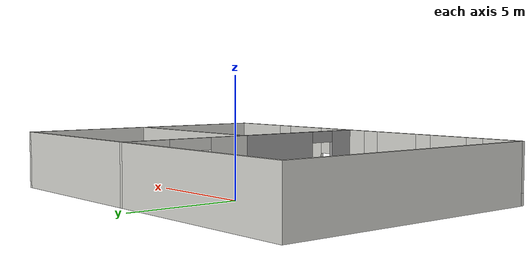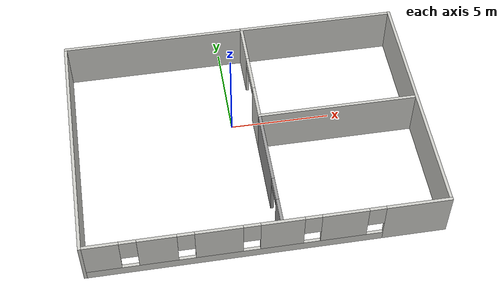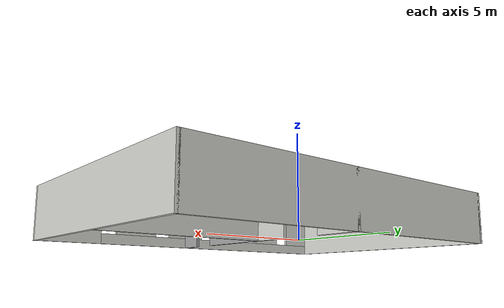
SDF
<?xml version='1.0'?>
<sdf version='1.6'>
  <model name='at_test_env'>
    <pose frame=''>0.56691 -1.61294 0 0 -0 0</pose>
    <link name='Wall_10'>
      <collision name='Wall_10_Collision'>
        <geometry>
          <box>
            <size>17.25 0.15 2.5</size>
          </box>
        </geometry>
        <pose frame=''>0 0 1.25 0 -0 0</pose>
      </collision>
      <visual name='Wall_10_Visual'>
        <pose frame=''>0 0 1.25 0 -0 0</pose>
        <geometry>
          <box>
            <size>17.25 0.15 2.5</size>
          </box>
        </geometry>
        <material>
          <script>
            <uri>file://media/materials/scripts/gazebo.material</uri>
            <name>Gazebo/CeilingTiled</name>
          </script>
          <ambient>1 1 1 1</ambient>
        </material>
        <meta>
          <layer>0</layer>
        </meta>
      </visual>
      <pose frame=''>-0 6.05 0 0 -0 0</pose>
    </link>
    <link name='Wall_11'>
      <collision name='Wall_11_Collision'>
        <geometry>
          <box>
            <size>12.25 0.15 2.5</size>
          </box>
        </geometry>
        <pose frame=''>0 0 1.25 0 -0 0</pose>
      </collision>
      <visual name='Wall_11_Visual'>
        <pose frame=''>0 0 1.25 0 -0 0</pose>
        <geometry>
          <box>
            <size>12.25 0.15 2.5</size>
          </box>
        </geometry>
        <material>
          <script>
            <uri>file://media/materials/scripts/gazebo.material</uri>
            <name>Gazebo/CeilingTiled</name>
          </script>
          <ambient>1 1 1 1</ambient>
        </material>
        <meta>
          <layer>0</layer>
        </meta>
      </visual>
      <pose frame=''>8.55 -0 0 0 -0 -1.5708</pose>
    </link>
    <link name='Wall_12'>
      <pose frame=''>-0 -6.05 0 0 -0 3.14159</pose>
      <visual name='Wall_12_Visual_0'>
        <pose frame=''>-7.05912 0 1.25 0 -0 0</pose>
        <geometry>
          <box>
            <size>3.13176 0.15 2.5</size>
          </box>
        </geometry>
        <material>
          <script>
            <uri>file://media/materials/scripts/gazebo.material</uri>
            <name>Gazebo/CeilingTiled</name>
          </script>
          <ambient>1 1 1 1</ambient>
        </material>
        <meta>
          <layer>0</layer>
        </meta>
      </visual>
      <collision name='Wall_12_Collision_0'>
        <geometry>
          <box>
            <size>3.13176 0.15 2.5</size>
          </box>
        </geometry>
        <pose frame=''>-7.05912 0 1.25 0 -0 0</pose>
      </collision>
      <visual name='Wall_12_Visual_1'>
        <pose frame=''>1.56588 0 0.25 0 -0 0</pose>
        <geometry>
          <box>
            <size>14.1182 0.15 0.5</size>
          </box>
        </geometry>
        <material>
          <script>
            <uri>file://media/materials/scripts/gazebo.material</uri>
            <name>Gazebo/CeilingTiled</name>
          </script>
          <ambient>1 1 1 1</ambient>
        </material>
        <meta>
          <layer>0</layer>
        </meta>
      </visual>
      <collision name='Wall_12_Collision_1'>
        <geometry>
          <box>
            <size>14.1182 0.15 0.5</size>
          </box>
        </geometry>
        <pose frame=''>1.56588 0 0.25 0 -0 0</pose>
      </collision>
      <visual name='Wall_12_Visual_2'>
        <pose frame=''>-3.59432 0 1.5 0 -0 0</pose>
        <geometry>
          <box>
            <size>2.19784 0.15 2</size>
          </box>
        </geometry>
        <material>
          <script>
            <uri>file://media/materials/scripts/gazebo.material</uri>
            <name>Gazebo/CeilingTiled</name>
          </script>
          <ambient>1 1 1 1</ambient>
        </material>
        <meta>
          <layer>0</layer>
        </meta>
      </visual>
      <collision name='Wall_12_Collision_2'>
        <geometry>
          <box>
            <size>2.19784 0.15 2</size>
          </box>
        </geometry>
        <pose frame=''>-3.59432 0 1.5 0 -0 0</pose>
      </collision>
      <visual name='Wall_12_Visual_3'>
        <pose frame=''>-0.672954 0 1.5 0 -0 0</pose>
        <geometry>
          <box>
            <size>2.04489 0.15 2</size>
          </box>
        </geometry>
        <material>
          <script>
            <uri>file://media/materials/scripts/gazebo.material</uri>
            <name>Gazebo/CeilingTiled</name>
          </script>
          <ambient>1 1 1 1</ambient>
        </material>
        <meta>
          <layer>0</layer>
        </meta>
      </visual>
      <collision name='Wall_12_Collision_3'>
        <geometry>
          <box>
            <size>2.04489 0.15 2</size>
          </box>
        </geometry>
        <pose frame=''>-0.672954 0 1.5 0 -0 0</pose>
      </collision>
      <visual name='Wall_12_Visual_4'>
        <pose frame=''>2.26371 0 1.5 0 -0 0</pose>
        <geometry>
          <box>
            <size>2.22843 0.15 2</size>
          </box>
        </geometry>
        <material>
          <script>
            <uri>file://media/materials/scripts/gazebo.material</uri>
            <name>Gazebo/CeilingTiled</name>
          </script>
          <ambient>1 1 1 1</ambient>
        </material>
        <meta>
          <layer>0</layer>
        </meta>
      </visual>
      <collision name='Wall_12_Collision_4'>
        <geometry>
          <box>
            <size>2.22843 0.15 2</size>
          </box>
        </geometry>
        <pose frame=''>2.26371 0 1.5 0 -0 0</pose>
      </collision>
      <visual name='Wall_12_Visual_5'>
        <pose frame=''>5.0933 0 1.5 0 -0 0</pose>
        <geometry>
          <box>
            <size>1.83076 0.15 2</size>
          </box>
        </geometry>
        <material>
          <script>
            <uri>file://media/materials/scripts/gazebo.material</uri>
            <name>Gazebo/CeilingTiled</name>
          </script>
          <ambient>1 1 1 1</ambient>
        </material>
        <meta>
          <layer>0</layer>
        </meta>
      </visual>
      <collision name='Wall_12_Collision_5'>
        <geometry>
          <box>
            <size>1.83076 0.15 2</size>
          </box>
        </geometry>
        <pose frame=''>5.0933 0 1.5 0 -0 0</pose>
      </collision>
      <visual name='Wall_12_Visual_6'>
        <pose frame=''>7.71684 0 1.5 0 -0 0</pose>
        <geometry>
          <box>
            <size>1.81632 0.15 2</size>
          </box>
        </geometry>
        <material>
          <script>
            <uri>file://media/materials/scripts/gazebo.material</uri>
            <name>Gazebo/CeilingTiled</name>
          </script>
          <ambient>1 1 1 1</ambient>
        </material>
        <meta>
          <layer>0</layer>
        </meta>
      </visual>
      <collision name='Wall_12_Collision_6'>
        <geometry>
          <box>
            <size>1.81632 0.15 2</size>
          </box>
        </geometry>
        <pose frame=''>7.71684 0 1.5 0 -0 0</pose>
      </collision>
      <visual name='Wall_12_Visual_7'>
        <pose frame=''>-5.09324 0 1.9 0 -0 0</pose>
        <geometry>
          <box>
            <size>0.8 0.15 1.2</size>
          </box>
        </geometry>
        <material>
          <script>
            <uri>file://media/materials/scripts/gazebo.material</uri>
            <name>Gazebo/CeilingTiled</name>
          </script>
          <ambient>1 1 1 1</ambient>
        </material>
        <meta>
          <layer>0</layer>
        </meta>
      </visual>
      <collision name='Wall_12_Collision_7'>
        <geometry>
          <box>
            <size>0.8 0.15 1.2</size>
          </box>
        </geometry>
        <pose frame=''>-5.09324 0 1.9 0 -0 0</pose>
      </collision>
      <visual name='Wall_12_Visual_8'>
        <pose frame=''>-2.0954 0 1.9 0 -0 0</pose>
        <geometry>
          <box>
            <size>0.8 0.15 1.2</size>
          </box>
        </geometry>
        <material>
          <script>
            <uri>file://media/materials/scripts/gazebo.material</uri>
            <name>Gazebo/CeilingTiled</name>
          </script>
          <ambient>1 1 1 1</ambient>
        </material>
        <meta>
          <layer>0</layer>
        </meta>
      </visual>
      <collision name='Wall_12_Collision_8'>
        <geometry>
          <box>
            <size>0.8 0.15 1.2</size>
          </box>
        </geometry>
        <pose frame=''>-2.0954 0 1.9 0 -0 0</pose>
      </collision>
      <visual name='Wall_12_Visual_9'>
        <pose frame=''>0.749492 0 1.9 0 -0 0</pose>
        <geometry>
          <box>
            <size>0.8 0.15 1.2</size>
          </box>
        </geometry>
        <material>
          <script>
            <uri>file://media/materials/scripts/gazebo.material</uri>
            <name>Gazebo/CeilingTiled</name>
          </script>
          <ambient>1 1 1 1</ambient>
        </material>
        <meta>
          <layer>0</layer>
        </meta>
      </visual>
      <collision name='Wall_12_Collision_9'>
        <geometry>
          <box>
            <size>0.8 0.15 1.2</size>
          </box>
        </geometry>
        <pose frame=''>0.749492 0 1.9 0 -0 0</pose>
      </collision>
      <visual name='Wall_12_Visual_10'>
        <pose frame=''>3.77792 0 1.9 0 -0 0</pose>
        <geometry>
          <box>
            <size>0.8 0.15 1.2</size>
          </box>
        </geometry>
        <material>
          <script>
            <uri>file://media/materials/scripts/gazebo.material</uri>
            <name>Gazebo/CeilingTiled</name>
          </script>
          <ambient>1 1 1 1</ambient>
        </material>
        <meta>
          <layer>0</layer>
        </meta>
      </visual>
      <collision name='Wall_12_Collision_10'>
        <geometry>
          <box>
            <size>0.8 0.15 1.2</size>
          </box>
        </geometry>
        <pose frame=''>3.77792 0 1.9 0 -0 0</pose>
      </collision>
      <visual name='Wall_12_Visual_11'>
        <pose frame=''>6.40868 0 1.9 0 -0 0</pose>
        <geometry>
          <box>
            <size>0.8 0.15 1.2</size>
          </box>
        </geometry>
        <material>
          <script>
            <uri>file://media/materials/scripts/gazebo.material</uri>
            <name>Gazebo/CeilingTiled</name>
          </script>
          <ambient>1 1 1 1</ambient>
        </material>
        <meta>
          <layer>0</layer>
        </meta>
      </visual>
      <collision name='Wall_12_Collision_11'>
        <geometry>
          <box>
            <size>0.8 0.15 1.2</size>
          </box>
        </geometry>
        <pose frame=''>6.40868 0 1.9 0 -0 0</pose>
      </collision>
    </link>
    <link name='Wall_13'>
      <collision name='Wall_13_Collision'>
        <geometry>
          <box>
            <size>12.25 0.15 2.5</size>
          </box>
        </geometry>
        <pose frame=''>0 0 1.25 0 -0 0</pose>
      </collision>
      <visual name='Wall_13_Visual'>
        <pose frame=''>0 0 1.25 0 -0 0</pose>
        <geometry>
          <box>
            <size>12.25 0.15 2.5</size>
          </box>
        </geometry>
        <material>
          <script>
            <uri>file://media/materials/scripts/gazebo.material</uri>
            <name>Gazebo/CeilingTiled</name>
          </script>
          <ambient>1 1 1 1</ambient>
        </material>
        <meta>
          <layer>0</layer>
        </meta>
      </visual>
      <pose frame=''>-8.55 -0 0 0 -0 1.5708</pose>
    </link>
    <link name='Wall_16'>
      <pose frame=''>0.627069 3.125 0 0 -0 -1.5708</pose>
      <visual name='Wall_16_Visual_0'>
        <pose frame=''>-1.93299 0 1.25 0 -0 0</pose>
        <geometry>
          <box>
            <size>2.13402 0.15 2.5</size>
          </box>
        </geometry>
        <material>
          <script>
            <uri>file://media/materials/scripts/gazebo.material</uri>
            <name>Gazebo/CeilingTiled</name>
          </script>
          <ambient>1 1 1 1</ambient>
        </material>
        <meta>
          <layer>0</layer>
        </meta>
      </visual>
      <collision name='Wall_16_Collision_0'>
        <geometry>
          <box>
            <size>2.13402 0.15 2.5</size>
          </box>
        </geometry>
        <pose frame=''>-1.93299 0 1.25 0 -0 0</pose>
      </collision>
      <visual name='Wall_16_Visual_1'>
        <pose frame=''>2.06701 0 1.25 0 -0 0</pose>
        <geometry>
          <box>
            <size>1.86598 0.15 2.5</size>
          </box>
        </geometry>
        <material>
          <script>
            <uri>file://media/materials/scripts/gazebo.material</uri>
            <name>Gazebo/CeilingTiled</name>
          </script>
          <ambient>1 1 1 1</ambient>
        </material>
        <meta>
          <layer>0</layer>
        </meta>
      </visual>
      <collision name='Wall_16_Collision_1'>
        <geometry>
          <box>
            <size>1.86598 0.15 2.5</size>
          </box>
        </geometry>
        <pose frame=''>2.06701 0 1.25 0 -0 0</pose>
      </collision>
      <visual name='Wall_16_Visual_2'>
        <pose frame=''>0.134023 0 2.25 0 -0 0</pose>
        <geometry>
          <box>
            <size>2 0.15 0.5</size>
          </box>
        </geometry>
        <material>
          <script>
            <uri>file://media/materials/scripts/gazebo.material</uri>
            <name>Gazebo/CeilingTiled</name>
          </script>
          <ambient>1 1 1 1</ambient>
        </material>
        <meta>
          <layer>0</layer>
        </meta>
      </visual>
      <collision name='Wall_16_Collision_2'>
        <geometry>
          <box>
            <size>2 0.15 0.5</size>
          </box>
        </geometry>
        <pose frame=''>0.134023 0 2.25 0 -0 0</pose>
      </collision>
    </link>
    <link name='Wall_17'>
      <collision name='Wall_17_Collision'>
        <geometry>
          <box>
            <size>8 0.15 2.5</size>
          </box>
        </geometry>
        <pose frame=''>0 0 1.25 0 -0 0</pose>
      </collision>
      <visual name='Wall_17_Visual'>
        <pose frame=''>0 0 1.25 0 -0 0</pose>
        <geometry>
          <box>
            <size>8 0.15 2.5</size>
          </box>
        </geometry>
        <material>
          <script>
            <uri>file://media/materials/scripts/gazebo.material</uri>
            <name>Gazebo/CeilingTiled</name>
          </script>
          <ambient>1 1 1 1</ambient>
        </material>
        <meta>
          <layer>0</layer>
        </meta>
      </visual>
      <pose frame=''>4.55207 0.2 0 0 -0 0</pose>
    </link>
    <link name='Wall_19'>
      <pose frame=''>0.627069 -2.85 0 0 -0 -1.5708</pose>
      <visual name='Wall_19_Visual_0'>
        <pose frame=''>-1.17334 0 1.25 0 -0 0</pose>
        <geometry>
          <box>
            <size>3.90332 0.15 2.5</size>
          </box>
        </geometry>
        <material>
          <script>
            <uri>file://media/materials/scripts/gazebo.material</uri>
            <name>Gazebo/Grey</name>
          </script>
          <ambient>1 1 1 1</ambient>
        </material>
        <meta>
          <layer>0</layer>
        </meta>
      </visual>
      <collision name='Wall_19_Collision_0'>
        <geometry>
          <box>
            <size>3.90332 0.15 2.5</size>
          </box>
        </geometry>
        <pose frame=''>-1.17334 0 1.25 0 -0 0</pose>
      </collision>
      <visual name='Wall_19_Visual_1'>
        <pose frame=''>2.55166 0 1.25 0 -0 0</pose>
        <geometry>
          <box>
            <size>1.14668 0.15 2.5</size>
          </box>
        </geometry>
        <material>
          <script>
            <uri>file://media/materials/scripts/gazebo.material</uri>
            <name>Gazebo/Grey</name>
          </script>
          <ambient>1 1 1 1</ambient>
        </material>
        <meta>
          <layer>0</layer>
        </meta>
      </visual>
      <collision name='Wall_19_Collision_1'>
        <geometry>
          <box>
            <size>1.14668 0.15 2.5</size>
          </box>
        </geometry>
        <pose frame=''>2.55166 0 1.25 0 -0 0</pose>
      </collision>
      <visual name='Wall_19_Visual_2'>
        <pose frame=''>1.37832 0 2.25 0 -0 0</pose>
        <geometry>
          <box>
            <size>1.2 0.15 0.5</size>
          </box>
        </geometry>
        <material>
          <script>
            <uri>file://media/materials/scripts/gazebo.material</uri>
            <name>Gazebo/Grey</name>
          </script>
          <ambient>1 1 1 1</ambient>
        </material>
        <meta>
          <layer>0</layer>
        </meta>
      </visual>
      <collision name='Wall_19_Collision_2'>
        <geometry>
          <box>
            <size>1.2 0.15 0.5</size>
          </box>
        </geometry>
        <pose frame=''>1.37832 0 2.25 0 -0 0</pose>
      </collision>
    </link>
    <static>1</static>
  </model>
</sdf>
